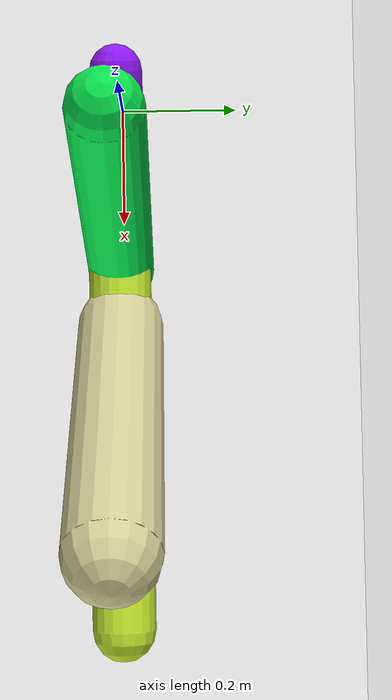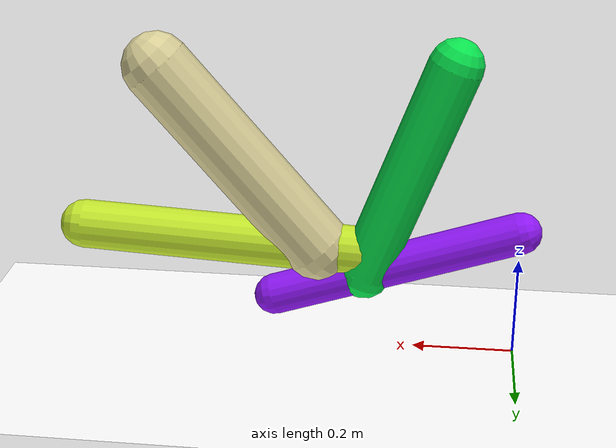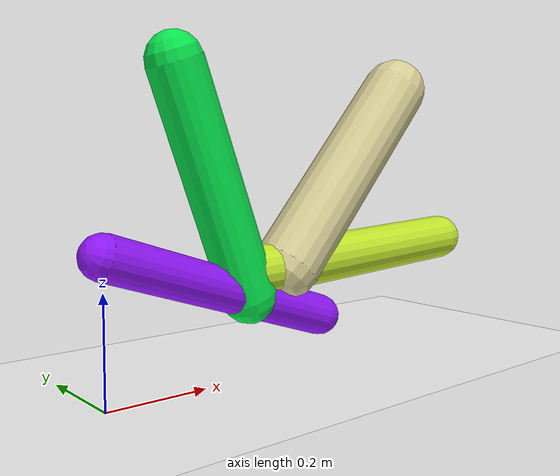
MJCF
<mujoco model="morphology">
  <option timestep="0.01"/>
  <default>
    <default class="/"/>
  </default>
  <asset>
    <texture name="texplane" type="2d" builtin="checker" rgb1="0.1 0.2 0.3" rgb2="0.2 0.3 0.4" width="300" height="300"/>
    <material name="MatPlane" class="/" texture="texplane" texrepeat="20 20" specular="1" shininess="1" reflectance="0.5"/>
  </asset>
  <worldbody>
    <light name="//unnamed_light_0" class="/" directional="true" pos="0 0 1.5" dir="0 0 -1.3" cutoff="1e+02" exponent="1" diffuse="1 1 1" specular="0.1 0.1 0.1"/>
    <geom name="ground" class="/" type="plane" size="15 15 0.5" material="MatPlane" rgba="1 1 1 1"/>
    <body name="body" pos="0 0 0.26">
      <geom name="geom0" class="/" type="capsule" contype="1" conaffinity="1" condim="3" size="0.041" rgba="0.57 0.091 0.98 1" friction="0.4 0.1 0.1" fromto="0 0 0 0.48 0 -0.16"/>
      <body name="body1" pos="0.3 0 -0.1">
        <geom name="geom1" class="/" type="capsule" contype="1" conaffinity="1" condim="3" size="0.053" rgba="0.032 0.91 0.31 1" friction="0.4 0.1 0.1" fromto="0 0 0 -0.16 0 0.43"/>
        <body name="body2" pos="-0.016 0 0.044">
          <geom name="geom2" class="/" type="capsule" contype="1" conaffinity="1" condim="3" size="0.049" rgba="0.77 0.91 0.18 1" friction="0.4 0.1 0.1" fromto="0 0 0 0.58 0 0.031"/>
          <body name="body3" pos="0.11 0 0.006">
            <geom name="geom3" class="/" type="capsule" contype="1" conaffinity="1" condim="3" size="0.067" rgba="0.86 0.82 0.6 1" friction="0.4 0.1 0.1" fromto="0 0 0 0.31 0 0.36"/>
            <joint name="joint3" class="/" type="hinge" axis="0 1 0" limited="true" stiffness="20" range="-34 34" armature="0.1" damping="2"/>
          </body>
          <joint name="joint2" class="/" type="hinge" axis="0 1 0" limited="true" stiffness="20" range="-53 53" armature="0.1" damping="2"/>
        </body>
        <joint name="joint1" class="/" type="hinge" axis="0 1 0" limited="true" stiffness="20" range="-53 53" armature="0.1" damping="2"/>
      </body>
      <joint name="rootx" class="/" type="slide" axis="1 0 0" limited="false" stiffness="0" armature="0" damping="0"/>
      <joint name="rootz" class="/" type="slide" axis="0 0 1" limited="false" stiffness="0" armature="0" damping="0"/>
      <joint name="rooty" class="/" type="hinge" axis="0 1 0" limited="false" stiffness="0" armature="0" damping="0"/>
    </body>
  </worldbody>
  <actuator>
    <motor name="motor3" class="/" ctrllimited="true" ctrlrange="-1 1" gear="1.9e+02" joint="joint3"/>
    <motor name="motor2" class="/" ctrllimited="true" ctrlrange="-1 1" gear="1.5e+02" joint="joint2"/>
    <motor name="motor1" class="/" ctrllimited="true" ctrlrange="-1 1" gear="1.4e+02" joint="joint1"/>
  </actuator>
  <sensor>
    <subtreelinvel name="velocity" body="body"/>
  </sensor>
</mujoco>
